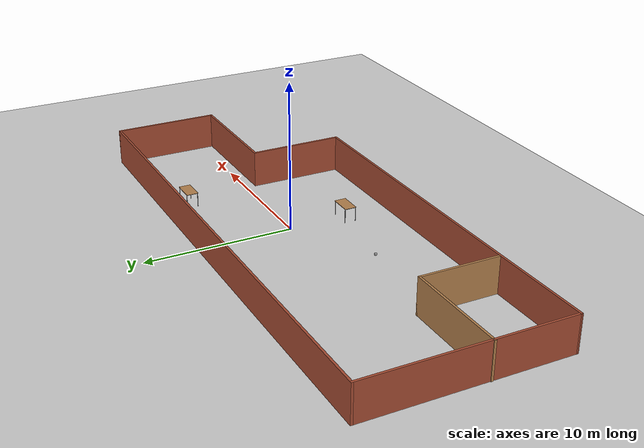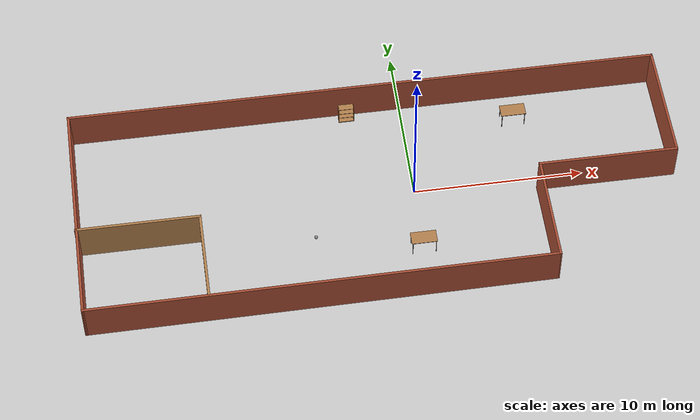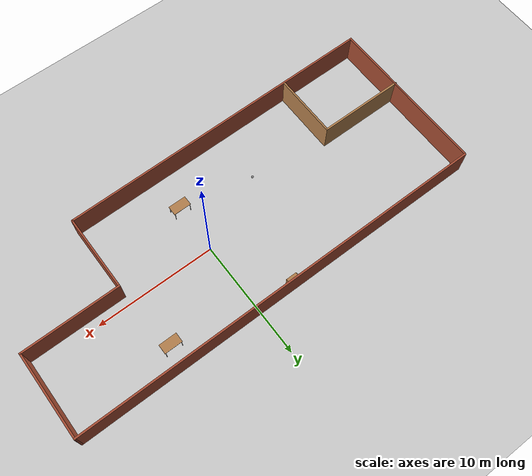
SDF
<sdf version="1.6">
 <world name="default">
  <light name="sun" type="directional">
   <pose>0 0 10 0 -0 0</pose>
   <diffuse>0.8 0.8 0.8 1</diffuse>
   <specular>0.2 0.2 0.2 1</specular>
   <attenuation>
    <range>1000</range>
    <constant>0.9</constant>
    <linear>0.01</linear>
    <quadratic>0.001</quadratic>
   </attenuation>
   <direction>-0.5 0.1 -0.9</direction>
  </light>
  <model name="ground_plane">
   <static>1</static>
   <link name="link">
    <collision name="collision">
     <geometry><plane><normal>0 0 1</normal><size>100 100</size></plane></geometry>
     <surface>
      <contact><collide_bitmask>65535</collide_bitmask></contact>
      <friction><ode><mu>100</mu><mu2>50</mu2></ode></friction>
     </surface>
    </collision>
    <visual name="visual">
     <cast_shadows>0</cast_shadows>
     <geometry><plane><normal>0 0 1</normal><size>100 100</size></plane></geometry>
     <material>
      <script><uri>file://media/materials/scripts/gazebo.material</uri><name>Gazebo/Grey</name></script>
     </material>
    </visual>
   </link>
  </model>
  <gravity>0 0 -9.8</gravity>
  <magnetic_field>6e-06 2.3e-05 -4.2e-05</magnetic_field>
  <atmosphere type="adiabatic"/>
  <physics name="default_physics" default="0" type="ode">
   <max_step_size>0.001</max_step_size>
   <real_time_factor>1</real_time_factor>
   <real_time_update_rate>1000</real_time_update_rate>
  </physics>
  <scene><ambient>0.4 0.4 0.4 1</ambient><background>0.7 0.7 0.7 1</background><shadows>1</shadows></scene>
  <audio><device>default</device></audio>
  <spherical_coordinates>
   <surface_model>EARTH_WGS84</surface_model>
   <latitude_deg>0</latitude_deg>
   <longitude_deg>0</longitude_deg>
   <elevation>0</elevation>
   <heading_deg>0</heading_deg>
  </spherical_coordinates>
  <model name="building2">
   <pose>-2.21683 -0.459701 0 0 -0 0</pose>
   <link name="Wall_0">
    <collision name="Wall_0_Collision">
     <geometry><box><size>13.75 0.15 2.5</size></box></geometry>
     <pose>0 0 1.25 0 -0 0</pose>
    </collision>
    <visual name="Wall_0_Visual">
     <pose>0 0 1.25 0 -0 0</pose>
     <geometry><box><size>13.75 0.15 2.5</size></box></geometry>
     <material>
      <script><uri>file://media/materials/scripts/gazebo.material</uri><name>Gazebo/Bricks</name></script>
      <ambient>1 1 1 1</ambient>
     </material>
     <meta><layer>0</layer></meta>
    </visual>
    <pose>-17.5267 0.000207 0 0 -0 1.5708</pose>
   </link>
   <link name="Wall_1">
    <collision name="Wall_1_Collision">
     <geometry><box><size>35.25 0.15 2.5</size></box></geometry>
     <pose>0 0 1.25 0 -0 0</pose>
    </collision>
    <visual name="Wall_1_Visual">
     <pose>0 0 1.25 0 -0 0</pose>
     <geometry><box><size>35.25 0.15 2.5</size></box></geometry>
     <material>
      <script><uri>file://media/materials/scripts/gazebo.material</uri><name>Gazebo/Bricks</name></script>
      <ambient>1 1 1 1</ambient>
     </material>
     <meta><layer>0</layer></meta>
    </visual>
    <pose>0.023261 6.80021 0 0 -0 0</pose>
   </link>
   <link name="Wall_2">
    <collision name="Wall_2_Collision">
     <geometry><box><size>7.25 0.15 2.5</size></box></geometry>
     <pose>0 0 1.25 0 -0 0</pose>
    </collision>
    <visual name="Wall_2_Visual">
     <pose>0 0 1.25 0 -0 0</pose>
     <geometry><box><size>7.25 0.15 2.5</size></box></geometry>
     <material>
      <script><uri>file://media/materials/scripts/gazebo.material</uri><name>Gazebo/Bricks</name></script>
      <ambient>1 1 1 1</ambient>
     </material>
     <meta><layer>0</layer></meta>
    </visual>
    <pose>17.5733 3.25021 0 0 -0 -1.5708</pose>
   </link>
   <link name="Wall_3">
    <collision name="Wall_3_Collision">
     <geometry><box><size>8.25 0.15 2.5</size></box></geometry>
     <pose>0 0 1.25 0 -0 0</pose>
    </collision>
    <visual name="Wall_3_Visual">
     <pose>0 0 1.25 0 -0 0</pose>
     <geometry><box><size>8.25 0.15 2.5</size></box></geometry>
     <material>
      <script><uri>file://media/materials/scripts/gazebo.material</uri><name>Gazebo/Bricks</name></script>
      <ambient>1 1 1 1</ambient>
     </material>
     <meta><layer>0</layer></meta>
    </visual>
    <pose>13.5233 -0.299793 0 0 -0 3.14159</pose>
   </link>
   <link name="Wall_4">
    <collision name="Wall_4_Collision">
     <geometry><box><size>6.5 0.15 2.5</size></box></geometry>
     <pose>0 0 1.25 0 -0 0</pose>
    </collision>
    <visual name="Wall_4_Visual">
     <pose>0 0 1.25 0 -0 0</pose>
     <geometry><box><size>6.5 0.15 2.5</size></box></geometry>
     <material>
      <script><uri>file://media/materials/scripts/gazebo.material</uri><name>Gazebo/Bricks</name></script>
      <ambient>1 1 1 1</ambient>
     </material>
     <meta><layer>0</layer></meta>
    </visual>
    <pose>9.47326 -3.47479 0 0 -0 -1.5708</pose>
   </link>
   <link name="Wall_5">
    <collision name="Wall_5_Collision">
     <geometry><box><size>27.1504 0.15 2.5</size></box></geometry>
     <pose>0 0 1.25 0 -0 0</pose>
    </collision>
    <visual name="Wall_5_Visual">
     <pose>0 0 1.25 0 -0 0</pose>
     <geometry><box><size>27.1504 0.15 2.5</size></box></geometry>
     <material>
      <script><uri>file://media/materials/scripts/gazebo.material</uri><name>Gazebo/Bricks</name></script>
      <ambient>1 1 1 1</ambient>
     </material>
     <meta><layer>0</layer></meta>
    </visual>
    <pose>-4.02674 -6.72479 0 0 -0 -3.13604</pose>
   </link>
   <link name="Wall_7">
    <collision name="Wall_7_Collision">
     <geometry><box><size>7.25 0.15 2.5</size></box></geometry>
     <pose>0 0 1.25 0 -0 0</pose>
    </collision>
    <visual name="Wall_7_Visual">
     <pose>0 0 1.25 0 -0 0</pose>
     <geometry><box><size>7.25 0.15 2.5</size></box></geometry>
     <material>
      <script><uri>file://media/materials/scripts/gazebo.material</uri><name>Gazebo/Wood</name></script>
      <ambient>1 1 1 1</ambient>
     </material>
     <meta><layer>0</layer></meta>
    </visual>
    <pose>-14.0233 -1.30997 0 0 -0 0</pose>
   </link>
   <link name="Wall_8">
    <collision name="Wall_8_Collision">
     <geometry><box><size>5.5 0.15 2.5</size></box></geometry>
     <pose>0 0 1.25 0 -0 0</pose>
    </collision>
    <visual name="Wall_8_Visual">
     <pose>0 0 1.25 0 -0 0</pose>
     <geometry><box><size>5.5 0.15 2.5</size></box></geometry>
     <material>
      <script><uri>file://media/materials/scripts/gazebo.material</uri><name>Gazebo/Wood</name></script>
      <ambient>1 1 1 1</ambient>
     </material>
     <meta><layer>0</layer></meta>
    </visual>
    <pose>-10.4733 -3.98497 0 0 -0 -1.5708</pose>
   </link>
   <static>1</static>
  </model>
  <model name="bookshelf">
   <static>1</static>
   <link name="link">
    <inertial><mass>1</mass></inertial>
    <collision name="back">
     <pose>0 0.005 0.6 0 -0 0</pose>
     <geometry><box><size>0.9 0.01 1.2</size></box></geometry>
    </collision>
    <visual name="visual1">
     <pose>0 0.005 0.6 0 -0 0</pose>
     <geometry><box><size>0.9 0.01 1.2</size></box></geometry>
     <material>
      <script><uri>file://media/materials/scripts/gazebo.material</uri><name>Gazebo/Wood</name></script>
     </material>
    </visual>
    <collision name="left_side">
     <pose>0.45 -0.195 0.6 0 -0 0</pose>
     <geometry><box><size>0.02 0.4 1.2</size></box></geometry>
    </collision>
    <visual name="visual2">
     <pose>0.45 -0.195 0.6 0 -0 0</pose>
     <geometry><box><size>0.02 0.4 1.2</size></box></geometry>
     <material>
      <script><uri>file://media/materials/scripts/gazebo.material</uri><name>Gazebo/Wood</name></script>
     </material>
    </visual>
    <collision name="right_side">
     <pose>-0.45 -0.195 0.6 0 -0 0</pose>
     <geometry><box><size>0.02 0.4 1.2</size></box></geometry>
    </collision>
    <visual name="visual3">
     <pose>-0.45 -0.195 0.6 0 -0 0</pose>
     <geometry><box><size>0.02 0.4 1.2</size></box></geometry>
     <material>
      <script><uri>file://media/materials/scripts/gazebo.material</uri><name>Gazebo/Wood</name></script>
     </material>
    </visual>
    <collision name="bottom">
     <pose>0 -0.195 0.03 0 -0 0</pose>
     <geometry><box><size>0.88 0.4 0.06</size></box></geometry>
    </collision>
    <visual name="visual4">
     <pose>0 -0.195 0.03 0 -0 0</pose>
     <geometry><box><size>0.88 0.4 0.06</size></box></geometry>
     <material>
      <script><uri>file://media/materials/scripts/gazebo.material</uri><name>Gazebo/Wood</name></script>
     </material>
    </visual>
    <collision name="top">
     <pose>0 -0.195 1.19 0 -0 0</pose>
     <geometry><box><size>0.88 0.4 0.02</size></box></geometry>
    </collision>
    <visual name="visual5">
     <pose>0 -0.195 1.19 0 -0 0</pose>
     <geometry><box><size>0.88 0.4 0.02</size></box></geometry>
     <material>
      <script><uri>file://media/materials/scripts/gazebo.material</uri><name>Gazebo/Wood</name></script>
     </material>
    </visual>
    <collision name="low_shelf">
     <pose>0 -0.195 0.43 0 -0 0</pose>
     <geometry><box><size>0.88 0.4 0.02</size></box></geometry>
    </collision>
    <visual name="visual6">
     <pose>0 -0.195 0.43 0 -0 0</pose>
     <geometry><box><size>0.88 0.4 0.02</size></box></geometry>
     <material>
      <script><uri>file://media/materials/scripts/gazebo.material</uri><name>Gazebo/Wood</name></script>
     </material>
    </visual>
    <collision name="high_shelf">
     <pose>0 -0.195 0.8 0 -0 0</pose>
     <geometry><box><size>0.88 0.4 0.02</size></box></geometry>
    </collision>
    <visual name="visual7">
     <pose>0 -0.195 0.8 0 -0 0</pose>
     <geometry><box><size>0.88 0.4 0.02</size></box></geometry>
     <material>
      <script><uri>file://media/materials/scripts/gazebo.material</uri><name>Gazebo/Wood</name></script>
     </material>
    </visual>
   </link>
   <pose>-3.27799 6.11408 0 0 -0 0</pose>
  </model>
  <model name="table">
   <static>1</static>
   <link name="link">
    <collision name="surface">
     <pose>0 0 1 0 -0 0</pose>
     <geometry><box><size>1.5 0.8 0.03</size></box></geometry>
     <surface><friction><ode><mu>0.6</mu><mu2>0.6</mu2></ode></friction></surface>
    </collision>
    <visual name="visual1">
     <pose>0 0 1 0 -0 0</pose>
     <geometry><box><size>1.5 0.8 0.03</size></box></geometry>
     <material>
      <script><uri>file://media/materials/scripts/gazebo.material</uri><name>Gazebo/Wood</name></script>
     </material>
    </visual>
    <collision name="front_left_leg">
     <pose>0.68 0.38 0.5 0 -0 0</pose>
     <geometry><cylinder><radius>0.02</radius><length>1</length></cylinder></geometry>
    </collision>
    <visual name="front_left_leg">
     <pose>0.68 0.38 0.5 0 -0 0</pose>
     <geometry><cylinder><radius>0.02</radius><length>1</length></cylinder></geometry>
     <material>
      <script><uri>file://media/materials/scripts/gazebo.material</uri><name>Gazebo/Grey</name></script>
     </material>
    </visual>
    <collision name="front_right_leg">
     <pose>0.68 -0.38 0.5 0 -0 0</pose>
     <geometry><cylinder><radius>0.02</radius><length>1</length></cylinder></geometry>
    </collision>
    <visual name="front_right_leg">
     <pose>0.68 -0.38 0.5 0 -0 0</pose>
     <geometry><cylinder><radius>0.02</radius><length>1</length></cylinder></geometry>
     <material>
      <script><uri>file://media/materials/scripts/gazebo.material</uri><name>Gazebo/Grey</name></script>
     </material>
    </visual>
    <collision name="back_right_leg">
     <pose>-0.68 -0.38 0.5 0 -0 0</pose>
     <geometry><cylinder><radius>0.02</radius><length>1</length></cylinder></geometry>
    </collision>
    <visual name="back_right_leg">
     <pose>-0.68 -0.38 0.5 0 -0 0</pose>
     <geometry><cylinder><radius>0.02</radius><length>1</length></cylinder></geometry>
     <material>
      <script><uri>file://media/materials/scripts/gazebo.material</uri><name>Gazebo/Grey</name></script>
     </material>
    </visual>
    <collision name="back_left_leg">
     <pose>-0.68 0.38 0.5 0 -0 0</pose>
     <geometry><cylinder><radius>0.02</radius><length>1</length></cylinder></geometry>
    </collision>
    <visual name="back_left_leg">
     <pose>-0.68 0.38 0.5 0 -0 0</pose>
     <geometry><cylinder><radius>0.02</radius><length>1</length></cylinder></geometry>
     <material>
      <script><uri>file://media/materials/scripts/gazebo.material</uri><name>Gazebo/Grey</name></script>
     </material>
    </visual>
   </link>
   <pose>6.62112 4.48162 0 0 -0 0</pose>
  </model>
  <model name="table_0">
   <static>1</static>
   <link name="link">
    <collision name="surface">
     <pose>0 0 1 0 -0 0</pose>
     <geometry><box><size>1.5 0.8 0.03</size></box></geometry>
     <surface><friction><ode><mu>0.6</mu><mu2>0.6</mu2></ode></friction></surface>
    </collision>
    <visual name="visual1">
     <pose>0 0 1 0 -0 0</pose>
     <geometry><box><size>1.5 0.8 0.03</size></box></geometry>
     <material>
      <script><uri>file://media/materials/scripts/gazebo.material</uri><name>Gazebo/Wood</name></script>
     </material>
    </visual>
    <collision name="front_left_leg">
     <pose>0.68 0.38 0.5 0 -0 0</pose>
     <geometry><cylinder><radius>0.02</radius><length>1</length></cylinder></geometry>
    </collision>
    <visual name="front_left_leg">
     <pose>0.68 0.38 0.5 0 -0 0</pose>
     <geometry><cylinder><radius>0.02</radius><length>1</length></cylinder></geometry>
     <material>
      <script><uri>file://media/materials/scripts/gazebo.material</uri><name>Gazebo/Grey</name></script>
     </material>
    </visual>
    <collision name="front_right_leg">
     <pose>0.68 -0.38 0.5 0 -0 0</pose>
     <geometry><cylinder><radius>0.02</radius><length>1</length></cylinder></geometry>
    </collision>
    <visual name="front_right_leg">
     <pose>0.68 -0.38 0.5 0 -0 0</pose>
     <geometry><cylinder><radius>0.02</radius><length>1</length></cylinder></geometry>
     <material>
      <script><uri>file://media/materials/scripts/gazebo.material</uri><name>Gazebo/Grey</name></script>
     </material>
    </visual>
    <collision name="back_right_leg">
     <pose>-0.68 -0.38 0.5 0 -0 0</pose>
     <geometry><cylinder><radius>0.02</radius><length>1</length></cylinder></geometry>
    </collision>
    <visual name="back_right_leg">
     <pose>-0.68 -0.38 0.5 0 -0 0</pose>
     <geometry><cylinder><radius>0.02</radius><length>1</length></cylinder></geometry>
     <material>
      <script><uri>file://media/materials/scripts/gazebo.material</uri><name>Gazebo/Grey</name></script>
     </material>
    </visual>
    <collision name="back_left_leg">
     <pose>-0.68 0.38 0.5 0 -0 0</pose>
     <geometry><cylinder><radius>0.02</radius><length>1</length></cylinder></geometry>
    </collision>
    <visual name="back_left_leg">
     <pose>-0.68 0.38 0.5 0 -0 0</pose>
     <geometry><cylinder><radius>0.02</radius><length>1</length></cylinder></geometry>
     <material>
      <script><uri>file://media/materials/scripts/gazebo.material</uri><name>Gazebo/Grey</name></script>
     </material>
    </visual>
   </link>
   <pose>-0.054605 -3.96482 0 0 -0 0</pose>
  </model>
  <model name="new_ball">
   <link name="link">
    <inertial>
     <mass>1</mass>
     <inertia><ixx>0.1</ixx><ixy>0</ixy><ixz>0</ixz><iyy>0.1</iyy><iyz>0</iyz><izz>0.1</izz></inertia>
    </inertial>
    <visual name="visual">
     <geometry><sphere><radius>0.1</radius></sphere></geometry>
     <material>
      <script><name>Gazebo/Grey</name><uri>file://media/materials/scripts/gazebo.material</uri></script>
      <shader type="vertex"><normal_map>__default__</normal_map></shader>
      <ambient>1 1 1 1</ambient>
      <diffuse>1 1 1 1</diffuse>
      <specular>1 1 1 1</specular>
      <emissive>1 1 1 1</emissive>
     </material>
    </visual>
    <collision name="collision">
     <geometry><sphere><radius>0.1</radius></sphere></geometry>
     <surface>
      <friction>
       <ode><mu>1</mu><mu2>1</mu2><fdir1>0 0 0</fdir1><slip1>0</slip1><slip2>0</slip2></ode>
       <torsional>
        <coefficient>1</coefficient>
        <patch_radius>0</patch_radius>
        <surface_radius>0</surface_radius>
        <use_patch_radius>1</use_patch_radius>
        <ode><slip>0</slip></ode>
       </torsional>
      </friction>
      <bounce><restitution_coefficient>0</restitution_coefficient><threshold>1e+06</threshold></bounce>
      <contact>
       <collide_without_contact>0</collide_without_contact>
       <collide_without_contact_bitmask>1</collide_without_contact_bitmask>
       <collide_bitmask>1</collide_bitmask>
       <ode>
        <soft_cfm>0</soft_cfm>
        <soft_erp>0.2</soft_erp>
        <kp>1e+13</kp>
        <kd>1</kd>
        <max_vel>0.01</max_vel>
        <min_depth>0</min_depth>
       </ode>
       <bullet>
        <split_impulse>1</split_impulse>
        <split_impulse_penetration_threshold>-0.01</split_impulse_penetration_threshold>
        <soft_cfm>0</soft_cfm>
        <soft_erp>0.2</soft_erp>
        <kp>1e+13</kp>
        <kd>1</kd>
       </bullet>
      </contact>
     </surface>
    </collision>
   </link>
   <static>0</static>
   <pose>-6.15974 -2.78163 0.5 0 -0 0</pose>
  </model>
 </world>
</sdf>
